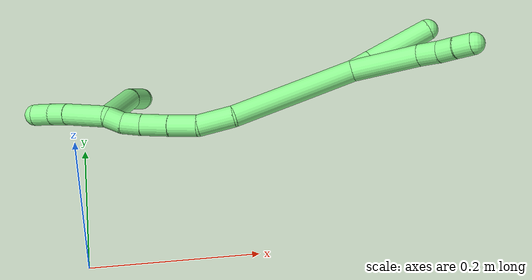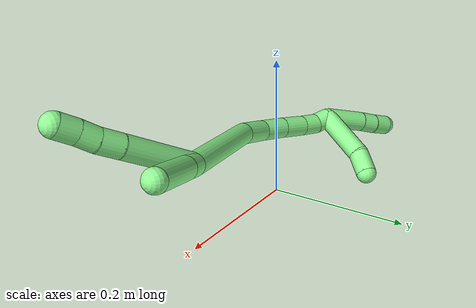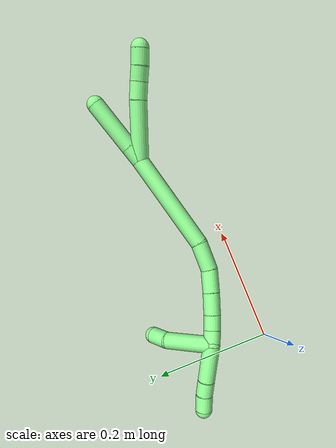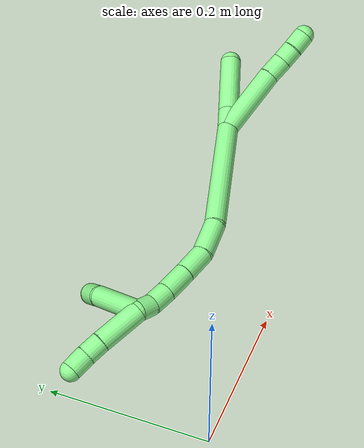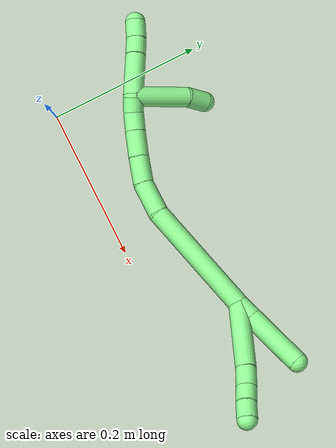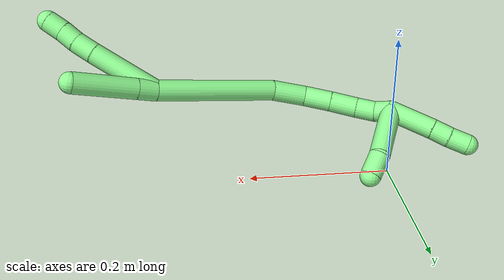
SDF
<sdf version="1.7">
 <world name="default">
  <model name="13">
   <static>0</static>
   <link name="13">
    <collision name="collision-cylinder-e_1_2_8">
     <pose>-0.004533 -0.015371 0.038741 0.377709 -0.108334 -0.020726</pose>
     <geometry><cylinder><radius>0.0125</radius><length>0.083849</length></cylinder></geometry>
     <surface>
      <friction><ode><mu>1.16</mu><mu2>1.16</mu2><slip1>0</slip1><slip2>0</slip2></ode></friction>
      <contact><ode><kp>1e+06</kp><kd>1</kd><max_vel>0</max_vel><min_depth>0.001</min_depth></ode></contact>
     </surface>
    </collision>
    <visual name="visual-cylinder-e_1_2_8">
     <pose>-0.004533 -0.015371 0.038741 0.377709 -0.108334 -0.020726</pose>
     <geometry><cylinder><radius>0.0125</radius><length>0.083849</length></cylinder></geometry>
     <material><ambient>0.564706 0.984314 0.572549 1</ambient></material>
    </visual>
    <collision name="collision-cylinder-e_2_8_9">
     <pose>-0.009568 -0.035731 0.088584 0.422408 -0.041192 -0.008833</pose>
     <geometry><cylinder><radius>0.0125</radius><length>0.024363</length></cylinder></geometry>
     <surface>
      <friction><ode><mu>1.16</mu><mu2>1.16</mu2><slip1>0</slip1><slip2>0</slip2></ode></friction>
      <contact><ode><kp>1e+06</kp><kd>1</kd><max_vel>0</max_vel><min_depth>0.001</min_depth></ode></contact>
     </surface>
    </collision>
    <visual name="visual-cylinder-e_2_8_9">
     <pose>-0.009568 -0.035731 0.088584 0.422408 -0.041192 -0.008833</pose>
     <geometry><cylinder><radius>0.0125</radius><length>0.024363</length></cylinder></geometry>
     <material><ambient>0.564706 0.984314 0.572549 1</ambient></material>
    </visual>
    <collision name="collision-cylinder-e_3_9_10">
     <pose>-0.011045 -0.045872 0.10837 0.535352 -0.096295 -0.026428</pose>
     <geometry><cylinder><radius>0.0125</radius><length>0.020289</length></cylinder></geometry>
     <surface>
      <friction><ode><mu>1.16</mu><mu2>1.16</mu2><slip1>0</slip1><slip2>0</slip2></ode></friction>
      <contact><ode><kp>1e+06</kp><kd>1</kd><max_vel>0</max_vel><min_depth>0.001</min_depth></ode></contact>
     </surface>
    </collision>
    <visual name="visual-cylinder-e_3_9_10">
     <pose>-0.011045 -0.045872 0.10837 0.535352 -0.096295 -0.026428</pose>
     <geometry><cylinder><radius>0.0125</radius><length>0.020289</length></cylinder></geometry>
     <material><ambient>0.564706 0.984314 0.572549 1</ambient></material>
    </visual>
    <collision name="collision-cylinder-e_4_10_6">
     <pose>-0.013131 -0.05552 0.126755 0.434104 -0.103564 -0.022858</pose>
     <geometry><cylinder><radius>0.0125</radius><length>0.021498</length></cylinder></geometry>
     <surface>
      <friction><ode><mu>1.16</mu><mu2>1.16</mu2><slip1>0</slip1><slip2>0</slip2></ode></friction>
      <contact><ode><kp>1e+06</kp><kd>1</kd><max_vel>0</max_vel><min_depth>0.001</min_depth></ode></contact>
     </surface>
    </collision>
    <visual name="visual-cylinder-e_4_10_6">
     <pose>-0.013131 -0.05552 0.126755 0.434104 -0.103564 -0.022858</pose>
     <geometry><cylinder><radius>0.0125</radius><length>0.021498</length></cylinder></geometry>
     <material><ambient>0.564706 0.984314 0.572549 1</ambient></material>
    </visual>
    <collision name="collision-cylinder-e_1_2_11">
     <pose>-0.005386 0.00235 0.010403 -0.222144 -0.467624 0.053114</pose>
     <geometry><cylinder><radius>0.0125</radius><length>0.023895</length></cylinder></geometry>
     <surface>
      <friction><ode><mu>1.16</mu><mu2>1.16</mu2><slip1>0</slip1><slip2>0</slip2></ode></friction>
      <contact><ode><kp>1e+06</kp><kd>1</kd><max_vel>0</max_vel><min_depth>0.001</min_depth></ode></contact>
     </surface>
    </collision>
    <visual name="visual-cylinder-e_1_2_11">
     <pose>-0.005386 0.00235 0.010403 -0.222144 -0.467624 0.053114</pose>
     <geometry><cylinder><radius>0.0125</radius><length>0.023895</length></cylinder></geometry>
     <material><ambient>0.564706 0.984314 0.572549 1</ambient></material>
    </visual>
    <collision name="collision-cylinder-e_2_11_5">
     <pose>-0.027979 0.012137 0.05392 -0.220947 -0.469235 0.053014</pose>
     <geometry><cylinder><radius>0.0125</radius><length>0.076105</length></cylinder></geometry>
     <surface>
      <friction><ode><mu>1.16</mu><mu2>1.16</mu2><slip1>0</slip1><slip2>0</slip2></ode></friction>
      <contact><ode><kp>1e+06</kp><kd>1</kd><max_vel>0</max_vel><min_depth>0.001</min_depth></ode></contact>
     </surface>
    </collision>
    <visual name="visual-cylinder-e_2_11_5">
     <pose>-0.027979 0.012137 0.05392 -0.220947 -0.469235 0.053014</pose>
     <geometry><cylinder><radius>0.0125</radius><length>0.076105</length></cylinder></geometry>
     <material><ambient>0.564706 0.984314 0.572549 1</ambient></material>
    </visual>
    <collision name="collision-cylinder-e_1_2_12">
     <pose>0.024535 -0.018922 -0.0671 2.86673 0.338391 1.78046</pose>
     <geometry><cylinder><radius>0.0125</radius><length>0.147817</length></cylinder></geometry>
     <surface>
      <friction><ode><mu>1.16</mu><mu2>1.16</mu2><slip1>0</slip1><slip2>0</slip2></ode></friction>
      <contact><ode><kp>1e+06</kp><kd>1</kd><max_vel>0</max_vel><min_depth>0.001</min_depth></ode></contact>
     </surface>
    </collision>
    <visual name="visual-cylinder-e_1_2_12">
     <pose>0.024535 -0.018922 -0.0671 2.86673 0.338391 1.78046</pose>
     <geometry><cylinder><radius>0.0125</radius><length>0.147817</length></cylinder></geometry>
     <material><ambient>0.564706 0.984314 0.572549 1</ambient></material>
    </visual>
    <collision name="collision-cylinder-e_2_12_13">
     <pose>0.053437 -0.038725 -0.154626 3.0985 0.210386 2.73894</pose>
     <geometry><cylinder><radius>0.0125</radius><length>0.04181</length></cylinder></geometry>
     <surface>
      <friction><ode><mu>1.16</mu><mu2>1.16</mu2><slip1>0</slip1><slip2>0</slip2></ode></friction>
      <contact><ode><kp>1e+06</kp><kd>1</kd><max_vel>0</max_vel><min_depth>0.001</min_depth></ode></contact>
     </surface>
    </collision>
    <visual name="visual-cylinder-e_2_12_13">
     <pose>0.053437 -0.038725 -0.154626 3.0985 0.210386 2.73894</pose>
     <geometry><cylinder><radius>0.0125</radius><length>0.04181</length></cylinder></geometry>
     <material><ambient>0.564706 0.984314 0.572549 1</ambient></material>
    </visual>
    <collision name="collision-cylinder-e_3_13_14">
     <pose>0.056678 -0.038137 -0.191882 -3.05455 -0.066446 1.30371</pose>
     <geometry><cylinder><radius>0.0125</radius><length>0.033865</length></cylinder></geometry>
     <surface>
      <friction><ode><mu>1.16</mu><mu2>1.16</mu2><slip1>0</slip1><slip2>0</slip2></ode></friction>
      <contact><ode><kp>1e+06</kp><kd>1</kd><max_vel>0</max_vel><min_depth>0.001</min_depth></ode></contact>
     </surface>
    </collision>
    <visual name="visual-cylinder-e_3_13_14">
     <pose>0.056678 -0.038137 -0.191882 -3.05455 -0.066446 1.30371</pose>
     <geometry><cylinder><radius>0.0125</radius><length>0.033865</length></cylinder></geometry>
     <material><ambient>0.564706 0.984314 0.572549 1</ambient></material>
    </visual>
    <collision name="collision-cylinder-e_4_14_15">
     <pose>0.054109 -0.034668 -0.224872 -3.01841 -0.088501 1.24546</pose>
     <geometry><cylinder><radius>0.0125</radius><length>0.032693</length></cylinder></geometry>
     <surface>
      <friction><ode><mu>1.16</mu><mu2>1.16</mu2><slip1>0</slip1><slip2>0</slip2></ode></friction>
      <contact><ode><kp>1e+06</kp><kd>1</kd><max_vel>0</max_vel><min_depth>0.001</min_depth></ode></contact>
     </surface>
    </collision>
    <visual name="visual-cylinder-e_4_14_15">
     <pose>0.054109 -0.034668 -0.224872 -3.01841 -0.088501 1.24546</pose>
     <geometry><cylinder><radius>0.0125</radius><length>0.032693</length></cylinder></geometry>
     <material><ambient>0.564706 0.984314 0.572549 1</ambient></material>
    </visual>
    <collision name="collision-cylinder-e_5_15_16">
     <pose>0.050881 -0.031309 -0.252711 -3.02585 -0.150527 1.83138</pose>
     <geometry><cylinder><radius>0.0125</radius><length>0.023786</length></cylinder></geometry>
     <surface>
      <friction><ode><mu>1.16</mu><mu2>1.16</mu2><slip1>0</slip1><slip2>0</slip2></ode></friction>
      <contact><ode><kp>1e+06</kp><kd>1</kd><max_vel>0</max_vel><min_depth>0.001</min_depth></ode></contact>
     </surface>
    </collision>
    <visual name="visual-cylinder-e_5_15_16">
     <pose>0.050881 -0.031309 -0.252711 -3.02585 -0.150527 1.83138</pose>
     <geometry><cylinder><radius>0.0125</radius><length>0.023786</length></cylinder></geometry>
     <material><ambient>0.564706 0.984314 0.572549 1</ambient></material>
    </visual>
    <collision name="collision-cylinder-e_6_16_1">
     <pose>0.044975 -0.030527 -0.273499 3.07844 -0.424277 -2.85034</pose>
     <geometry><cylinder><radius>0.0125</radius><length>0.020029</length></cylinder></geometry>
     <surface>
      <friction><ode><mu>1.16</mu><mu2>1.16</mu2><slip1>0</slip1><slip2>0</slip2></ode></friction>
      <contact><ode><kp>1e+06</kp><kd>1</kd><max_vel>0</max_vel><min_depth>0.001</min_depth></ode></contact>
     </surface>
    </collision>
    <visual name="visual-cylinder-e_6_16_1">
     <pose>0.044975 -0.030527 -0.273499 3.07844 -0.424277 -2.85034</pose>
     <geometry><cylinder><radius>0.0125</radius><length>0.020029</length></cylinder></geometry>
     <material><ambient>0.564706 0.984314 0.572549 1</ambient></material>
    </visual>
    <collision name="collision-cylinder-e_1_1_17">
     <pose>0.037294 -0.022336 -0.308126 -2.81067 -0.131117 0.749177</pose>
     <geometry><cylinder><radius>0.0125</radius><length>0.054431</length></cylinder></geometry>
     <surface>
      <friction><ode><mu>1.16</mu><mu2>1.16</mu2><slip1>0</slip1><slip2>0</slip2></ode></friction>
      <contact><ode><kp>1e+06</kp><kd>1</kd><max_vel>0</max_vel><min_depth>0.001</min_depth></ode></contact>
     </surface>
    </collision>
    <visual name="visual-cylinder-e_1_1_17">
     <pose>0.037294 -0.022336 -0.308126 -2.81067 -0.131117 0.749177</pose>
     <geometry><cylinder><radius>0.0125</radius><length>0.054431</length></cylinder></geometry>
     <material><ambient>0.564706 0.984314 0.572549 1</ambient></material>
    </visual>
    <collision name="collision-cylinder-e_2_17_18">
     <pose>0.032823 -0.00968 -0.343893 -2.7789 -0.083035 0.445587</pose>
     <geometry><cylinder><radius>0.0125</radius><length>0.022</length></cylinder></geometry>
     <surface>
      <friction><ode><mu>1.16</mu><mu2>1.16</mu2><slip1>0</slip1><slip2>0</slip2></ode></friction>
      <contact><ode><kp>1e+06</kp><kd>1</kd><max_vel>0</max_vel><min_depth>0.001</min_depth></ode></contact>
     </surface>
    </collision>
    <visual name="visual-cylinder-e_2_17_18">
     <pose>0.032823 -0.00968 -0.343893 -2.7789 -0.083035 0.445587</pose>
     <geometry><cylinder><radius>0.0125</radius><length>0.022</length></cylinder></geometry>
     <material><ambient>0.564706 0.984314 0.572549 1</ambient></material>
    </visual>
    <collision name="collision-cylinder-e_3_18_4">
     <pose>0.031428 -0.002673 -0.365496 -2.8736 -0.041012 0.301957</pose>
     <geometry><cylinder><radius>0.0125</radius><length>0.023568</length></cylinder></geometry>
     <surface>
      <friction><ode><mu>1.16</mu><mu2>1.16</mu2><slip1>0</slip1><slip2>0</slip2></ode></friction>
      <contact><ode><kp>1e+06</kp><kd>1</kd><max_vel>0</max_vel><min_depth>0.001</min_depth></ode></contact>
     </surface>
    </collision>
    <visual name="visual-cylinder-e_3_18_4">
     <pose>0.031428 -0.002673 -0.365496 -2.8736 -0.041012 0.301957</pose>
     <geometry><cylinder><radius>0.0125</radius><length>0.023568</length></cylinder></geometry>
     <material><ambient>0.564706 0.984314 0.572549 1</ambient></material>
    </visual>
    <collision name="collision-cylinder-e_1_1_19">
     <pose>0.027452 0.001473 -0.276094 -1.37345 -0.383401 0.315592</pose>
     <geometry><cylinder><radius>0.0125</radius><length>0.071644</length></cylinder></geometry>
     <surface>
      <friction><ode><mu>1.16</mu><mu2>1.16</mu2><slip1>0</slip1><slip2>0</slip2></ode></friction>
      <contact><ode><kp>1e+06</kp><kd>1</kd><max_vel>0</max_vel><min_depth>0.001</min_depth></ode></contact>
     </surface>
    </collision>
    <visual name="visual-cylinder-e_1_1_19">
     <pose>0.027452 0.001473 -0.276094 -1.37345 -0.383401 0.315592</pose>
     <geometry><cylinder><radius>0.0125</radius><length>0.071644</length></cylinder></geometry>
     <material><ambient>0.564706 0.984314 0.572549 1</ambient></material>
    </visual>
    <collision name="collision-cylinder-e_2_19_3">
     <pose>0.012728 0.047515 -0.265344 -1.26598 -0.093518 0.068638</pose>
     <geometry><cylinder><radius>0.0125</radius><length>0.028356</length></cylinder></geometry>
     <surface>
      <friction><ode><mu>1.16</mu><mu2>1.16</mu2><slip1>0</slip1><slip2>0</slip2></ode></friction>
      <contact><ode><kp>1e+06</kp><kd>1</kd><max_vel>0</max_vel><min_depth>0.001</min_depth></ode></contact>
     </surface>
    </collision>
    <visual name="visual-cylinder-e_2_19_3">
     <pose>0.012728 0.047515 -0.265344 -1.26598 -0.093518 0.068638</pose>
     <geometry><cylinder><radius>0.0125</radius><length>0.028356</length></cylinder></geometry>
     <material><ambient>0.564706 0.984314 0.572549 1</ambient></material>
    </visual>
    <collision name="collision-sphere-3">
     <pose>0.011404 0.06098 -0.261107 0 -0 0</pose>
     <geometry><sphere><radius>0.0125</radius></sphere></geometry>
     <surface>
      <friction><ode><mu>1.16</mu><mu2>1.16</mu2><slip1>0</slip1><slip2>0</slip2></ode></friction>
      <contact><ode><kp>1e+06</kp><kd>1</kd><max_vel>0</max_vel><min_depth>0.001</min_depth></ode></contact>
     </surface>
    </collision>
    <visual name="visual-sphere-3">
     <pose>0.011404 0.06098 -0.261107 0 -0 0</pose>
     <geometry><sphere><radius>0.0125</radius></sphere></geometry>
     <material><ambient>0.564706 0.984314 0.572549 1</ambient></material>
    </visual>
    <collision name="collision-sphere-19">
     <pose>0.014052 0.03405 -0.26958 0 -0 0</pose>
     <geometry><sphere><radius>0.0125</radius></sphere></geometry>
     <surface>
      <friction><ode><mu>1.16</mu><mu2>1.16</mu2><slip1>0</slip1><slip2>0</slip2></ode></friction>
      <contact><ode><kp>1e+06</kp><kd>1</kd><max_vel>0</max_vel><min_depth>0.001</min_depth></ode></contact>
     </surface>
    </collision>
    <visual name="visual-sphere-19">
     <pose>0.014052 0.03405 -0.26958 0 -0 0</pose>
     <geometry><sphere><radius>0.0125</radius></sphere></geometry>
     <material><ambient>0.564706 0.984314 0.572549 1</ambient></material>
    </visual>
    <collision name="collision-sphere-11">
     <pose>-0.010771 0.004699 0.020806 0 -0 0</pose>
     <geometry><sphere><radius>0.0125</radius></sphere></geometry>
     <surface>
      <friction><ode><mu>1.16</mu><mu2>1.16</mu2><slip1>0</slip1><slip2>0</slip2></ode></friction>
      <contact><ode><kp>1e+06</kp><kd>1</kd><max_vel>0</max_vel><min_depth>0.001</min_depth></ode></contact>
     </surface>
    </collision>
    <visual name="visual-sphere-11">
     <pose>-0.010771 0.004699 0.020806 0 -0 0</pose>
     <geometry><sphere><radius>0.0125</radius></sphere></geometry>
     <material><ambient>0.564706 0.984314 0.572549 1</ambient></material>
    </visual>
    <collision name="collision-sphere-6">
     <pose>-0.014242 -0.060017 0.136454 0 -0 0</pose>
     <geometry><sphere><radius>0.0125</radius></sphere></geometry>
     <surface>
      <friction><ode><mu>1.16</mu><mu2>1.16</mu2><slip1>0</slip1><slip2>0</slip2></ode></friction>
      <contact><ode><kp>1e+06</kp><kd>1</kd><max_vel>0</max_vel><min_depth>0.001</min_depth></ode></contact>
     </surface>
    </collision>
    <visual name="visual-sphere-6">
     <pose>-0.014242 -0.060017 0.136454 0 -0 0</pose>
     <geometry><sphere><radius>0.0125</radius></sphere></geometry>
     <material><ambient>0.564706 0.984314 0.572549 1</ambient></material>
    </visual>
    <collision name="collision-sphere-10">
     <pose>-0.01202 -0.051023 0.117055 0 -0 0</pose>
     <geometry><sphere><radius>0.0125</radius></sphere></geometry>
     <surface>
      <friction><ode><mu>1.16</mu><mu2>1.16</mu2><slip1>0</slip1><slip2>0</slip2></ode></friction>
      <contact><ode><kp>1e+06</kp><kd>1</kd><max_vel>0</max_vel><min_depth>0.001</min_depth></ode></contact>
     </surface>
    </collision>
    <visual name="visual-sphere-10">
     <pose>-0.01202 -0.051023 0.117055 0 -0 0</pose>
     <geometry><sphere><radius>0.0125</radius></sphere></geometry>
     <material><ambient>0.564706 0.984314 0.572549 1</ambient></material>
    </visual>
    <collision name="collision-sphere-9">
     <pose>-0.010069 -0.040721 0.099685 0 -0 0</pose>
     <geometry><sphere><radius>0.0125</radius></sphere></geometry>
     <surface>
      <friction><ode><mu>1.16</mu><mu2>1.16</mu2><slip1>0</slip1><slip2>0</slip2></ode></friction>
      <contact><ode><kp>1e+06</kp><kd>1</kd><max_vel>0</max_vel><min_depth>0.001</min_depth></ode></contact>
     </surface>
    </collision>
    <visual name="visual-sphere-9">
     <pose>-0.010069 -0.040721 0.099685 0 -0 0</pose>
     <geometry><sphere><radius>0.0125</radius></sphere></geometry>
     <material><ambient>0.564706 0.984314 0.572549 1</ambient></material>
    </visual>
    <collision name="collision-sphere-2">
     <geometry><sphere><radius>0.0125</radius></sphere></geometry>
     <surface>
      <friction><ode><mu>1.16</mu><mu2>1.16</mu2><slip1>0</slip1><slip2>0</slip2></ode></friction>
      <contact><ode><kp>1e+06</kp><kd>1</kd><max_vel>0</max_vel><min_depth>0.001</min_depth></ode></contact>
     </surface>
    </collision>
    <visual name="visual-sphere-2">
     <geometry><sphere><radius>0.0125</radius></sphere></geometry>
     <material><ambient>0.564706 0.984314 0.572549 1</ambient></material>
    </visual>
    <collision name="collision-sphere-8">
     <pose>-0.009066 -0.030742 0.077482 0 -0 0</pose>
     <geometry><sphere><radius>0.0125</radius></sphere></geometry>
     <surface>
      <friction><ode><mu>1.16</mu><mu2>1.16</mu2><slip1>0</slip1><slip2>0</slip2></ode></friction>
      <contact><ode><kp>1e+06</kp><kd>1</kd><max_vel>0</max_vel><min_depth>0.001</min_depth></ode></contact>
     </surface>
    </collision>
    <visual name="visual-sphere-8">
     <pose>-0.009066 -0.030742 0.077482 0 -0 0</pose>
     <geometry><sphere><radius>0.0125</radius></sphere></geometry>
     <material><ambient>0.564706 0.984314 0.572549 1</ambient></material>
    </visual>
    <collision name="collision-sphere-5">
     <pose>-0.045186 0.019575 0.087035 0 -0 0</pose>
     <geometry><sphere><radius>0.0125</radius></sphere></geometry>
     <surface>
      <friction><ode><mu>1.16</mu><mu2>1.16</mu2><slip1>0</slip1><slip2>0</slip2></ode></friction>
      <contact><ode><kp>1e+06</kp><kd>1</kd><max_vel>0</max_vel><min_depth>0.001</min_depth></ode></contact>
     </surface>
    </collision>
    <visual name="visual-sphere-5">
     <pose>-0.045186 0.019575 0.087035 0 -0 0</pose>
     <geometry><sphere><radius>0.0125</radius></sphere></geometry>
     <material><ambient>0.564706 0.984314 0.572549 1</ambient></material>
    </visual>
    <collision name="collision-sphere-12">
     <pose>0.049071 -0.037844 -0.134201 0 -0 0</pose>
     <geometry><sphere><radius>0.0125</radius></sphere></geometry>
     <surface>
      <friction><ode><mu>1.16</mu><mu2>1.16</mu2><slip1>0</slip1><slip2>0</slip2></ode></friction>
      <contact><ode><kp>1e+06</kp><kd>1</kd><max_vel>0</max_vel><min_depth>0.001</min_depth></ode></contact>
     </surface>
    </collision>
    <visual name="visual-sphere-12">
     <pose>0.049071 -0.037844 -0.134201 0 -0 0</pose>
     <geometry><sphere><radius>0.0125</radius></sphere></geometry>
     <material><ambient>0.564706 0.984314 0.572549 1</ambient></material>
    </visual>
    <collision name="collision-sphere-13">
     <pose>0.057802 -0.039606 -0.175051 0 -0 0</pose>
     <geometry><sphere><radius>0.0125</radius></sphere></geometry>
     <surface>
      <friction><ode><mu>1.16</mu><mu2>1.16</mu2><slip1>0</slip1><slip2>0</slip2></ode></friction>
      <contact><ode><kp>1e+06</kp><kd>1</kd><max_vel>0</max_vel><min_depth>0.001</min_depth></ode></contact>
     </surface>
    </collision>
    <visual name="visual-sphere-13">
     <pose>0.057802 -0.039606 -0.175051 0 -0 0</pose>
     <geometry><sphere><radius>0.0125</radius></sphere></geometry>
     <material><ambient>0.564706 0.984314 0.572549 1</ambient></material>
    </visual>
    <collision name="collision-sphere-14">
     <pose>0.055554 -0.036668 -0.208713 0 -0 0</pose>
     <geometry><sphere><radius>0.0125</radius></sphere></geometry>
     <surface>
      <friction><ode><mu>1.16</mu><mu2>1.16</mu2><slip1>0</slip1><slip2>0</slip2></ode></friction>
      <contact><ode><kp>1e+06</kp><kd>1</kd><max_vel>0</max_vel><min_depth>0.001</min_depth></ode></contact>
     </surface>
    </collision>
    <visual name="visual-sphere-14">
     <pose>0.055554 -0.036668 -0.208713 0 -0 0</pose>
     <geometry><sphere><radius>0.0125</radius></sphere></geometry>
     <material><ambient>0.564706 0.984314 0.572549 1</ambient></material>
    </visual>
    <collision name="collision-sphere-15">
     <pose>0.052664 -0.032667 -0.241031 0 -0 0</pose>
     <geometry><sphere><radius>0.0125</radius></sphere></geometry>
     <surface>
      <friction><ode><mu>1.16</mu><mu2>1.16</mu2><slip1>0</slip1><slip2>0</slip2></ode></friction>
      <contact><ode><kp>1e+06</kp><kd>1</kd><max_vel>0</max_vel><min_depth>0.001</min_depth></ode></contact>
     </surface>
    </collision>
    <visual name="visual-sphere-15">
     <pose>0.052664 -0.032667 -0.241031 0 -0 0</pose>
     <geometry><sphere><radius>0.0125</radius></sphere></geometry>
     <material><ambient>0.564706 0.984314 0.572549 1</ambient></material>
    </visual>
    <collision name="collision-sphere-16">
     <pose>0.049097 -0.029951 -0.264391 0 -0 0</pose>
     <geometry><sphere><radius>0.0125</radius></sphere></geometry>
     <surface>
      <friction><ode><mu>1.16</mu><mu2>1.16</mu2><slip1>0</slip1><slip2>0</slip2></ode></friction>
      <contact><ode><kp>1e+06</kp><kd>1</kd><max_vel>0</max_vel><min_depth>0.001</min_depth></ode></contact>
     </surface>
    </collision>
    <visual name="visual-sphere-16">
     <pose>0.049097 -0.029951 -0.264391 0 -0 0</pose>
     <geometry><sphere><radius>0.0125</radius></sphere></geometry>
     <material><ambient>0.564706 0.984314 0.572549 1</ambient></material>
    </visual>
    <collision name="collision-sphere-1">
     <pose>0.040852 -0.031103 -0.282608 0 -0 0</pose>
     <geometry><sphere><radius>0.0125</radius></sphere></geometry>
     <surface>
      <friction><ode><mu>1.16</mu><mu2>1.16</mu2><slip1>0</slip1><slip2>0</slip2></ode></friction>
      <contact><ode><kp>1e+06</kp><kd>1</kd><max_vel>0</max_vel><min_depth>0.001</min_depth></ode></contact>
     </surface>
    </collision>
    <visual name="visual-sphere-1">
     <pose>0.040852 -0.031103 -0.282608 0 -0 0</pose>
     <geometry><sphere><radius>0.0125</radius></sphere></geometry>
     <material><ambient>0.564706 0.984314 0.572549 1</ambient></material>
    </visual>
    <collision name="collision-sphere-18">
     <pose>0.031911 -0.00579 -0.354142 0 -0 0</pose>
     <geometry><sphere><radius>0.0125</radius></sphere></geometry>
     <surface>
      <friction><ode><mu>1.16</mu><mu2>1.16</mu2><slip1>0</slip1><slip2>0</slip2></ode></friction>
      <contact><ode><kp>1e+06</kp><kd>1</kd><max_vel>0</max_vel><min_depth>0.001</min_depth></ode></contact>
     </surface>
    </collision>
    <visual name="visual-sphere-18">
     <pose>0.031911 -0.00579 -0.354142 0 -0 0</pose>
     <geometry><sphere><radius>0.0125</radius></sphere></geometry>
     <material><ambient>0.564706 0.984314 0.572549 1</ambient></material>
    </visual>
    <collision name="collision-sphere-17">
     <pose>0.033736 -0.013569 -0.333644 0 -0 0</pose>
     <geometry><sphere><radius>0.0125</radius></sphere></geometry>
     <surface>
      <friction><ode><mu>1.16</mu><mu2>1.16</mu2><slip1>0</slip1><slip2>0</slip2></ode></friction>
      <contact><ode><kp>1e+06</kp><kd>1</kd><max_vel>0</max_vel><min_depth>0.001</min_depth></ode></contact>
     </surface>
    </collision>
    <visual name="visual-sphere-17">
     <pose>0.033736 -0.013569 -0.333644 0 -0 0</pose>
     <geometry><sphere><radius>0.0125</radius></sphere></geometry>
     <material><ambient>0.564706 0.984314 0.572549 1</ambient></material>
    </visual>
    <collision name="collision-sphere-4">
     <pose>0.030945 0.000445 -0.37685 0 -0 0</pose>
     <geometry><sphere><radius>0.0125</radius></sphere></geometry>
     <surface>
      <friction><ode><mu>1.16</mu><mu2>1.16</mu2><slip1>0</slip1><slip2>0</slip2></ode></friction>
      <contact><ode><kp>1e+06</kp><kd>1</kd><max_vel>0</max_vel><min_depth>0.001</min_depth></ode></contact>
     </surface>
    </collision>
    <visual name="visual-sphere-4">
     <pose>0.030945 0.000445 -0.37685 0 -0 0</pose>
     <geometry><sphere><radius>0.0125</radius></sphere></geometry>
     <material><ambient>0.564706 0.984314 0.572549 1</ambient></material>
    </visual>
    <inertial>
     <pose>0.018804 -0.015386 -0.116394 0 -0 0</pose>
     <mass>0.75</mass>
     <inertia>
      <ixx>0.000366</ixx>
      <ixy>0</ixy>
      <ixz>0</ixz>
      <iyy>0.000471</iyy>
      <iyz>0</iyz>
      <izz>-1.8e-05</izz>
     </inertia>
    </inertial>
   </link>
   <pose>0.318263 0.0995 0.187571 -1.39312 0.737967 -1.6315</pose>
  </model>
 </world>
</sdf>
